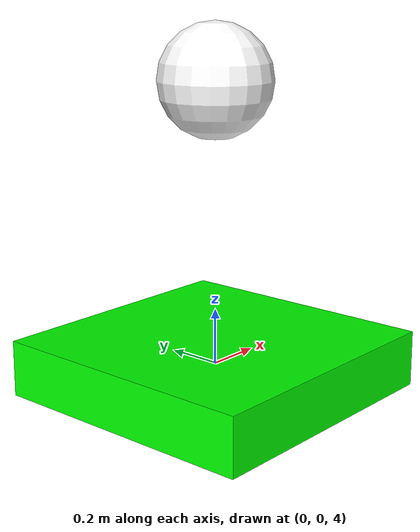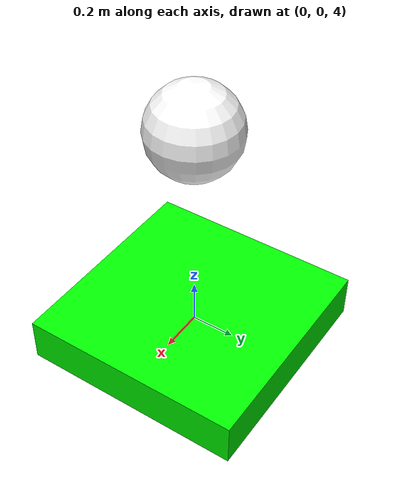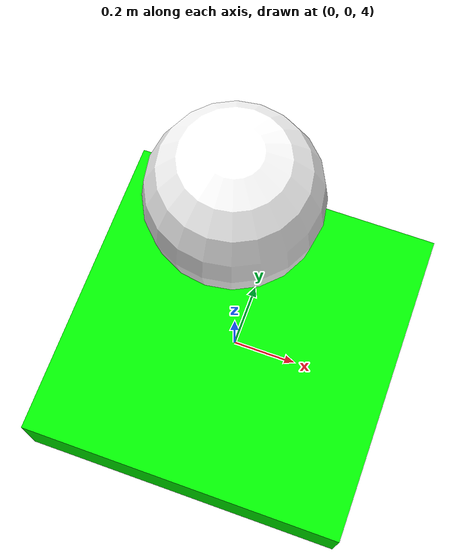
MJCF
<mujoco>
    <include file="../common/materials.xml" />
    <option timestep="0.02" solver="PGS" />
    <worldbody>
        <light pos="0 0 1.5" dir="0 0 -1" directional="true" />
        <geom name="floor" size="0 0 0.01" type="plane" material="motphys-ground" contype="1"
            conaffinity="0" priority="1"
            friction="0.6" condim="3" />
        <body name="ball" pos="0 0 5">
            <freejoint />
            <geom priority="1" type="sphere" size="0.2" rgba="1 1 1 1" />
        </body>

        <body name="box" pos="0 0 4">
            <geom type="box" size="0.5 0.5 0.1" rgba="0 1 0 1" />
            <joint type="slide" axis="0 0 1" springdamper="0.3 1" springref="0" />
        </body>
    </worldbody>
</mujoco>

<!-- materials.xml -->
<!--
Common textures, colors and materials to be used throughout this suite. Some
materials such as xxx_highlight are activated on occurence of certain events,
for example receiving a positive reward.
-->
<mujoco>
  <asset>
    <texture name="motphys-ground" type="2d" file="motphys-ground.png" />
    <material name="motphys-ground" texture="motphys-ground" texuniform="true"
      texrepeat="0.4 0.4" />
  </asset>
</mujoco>
